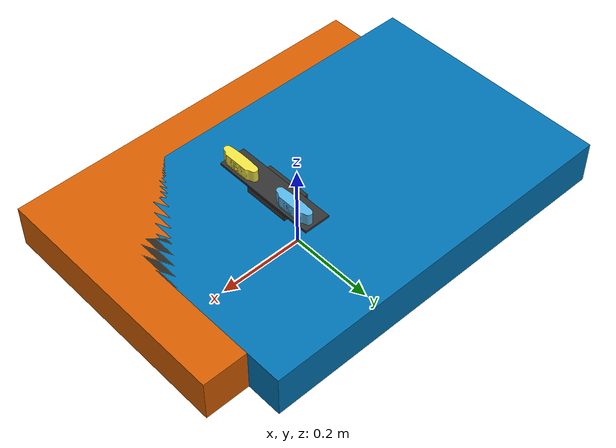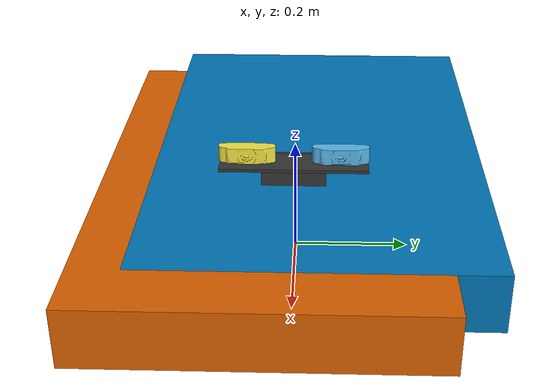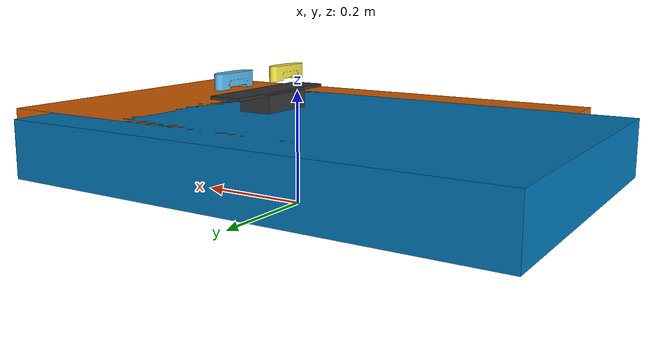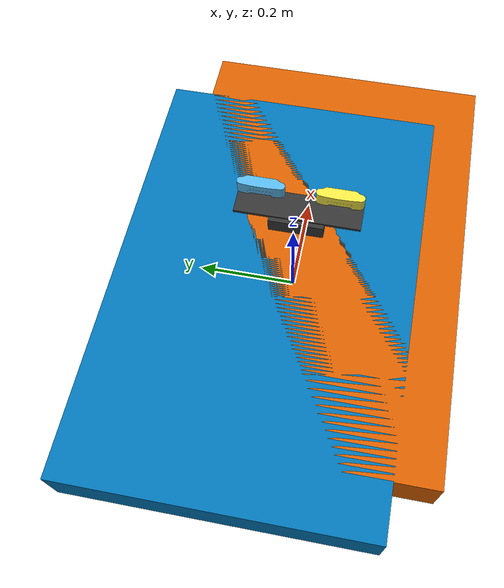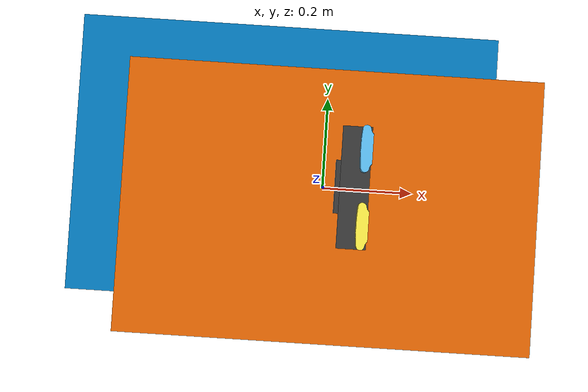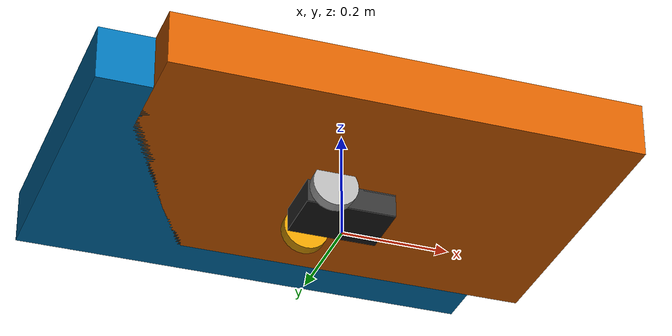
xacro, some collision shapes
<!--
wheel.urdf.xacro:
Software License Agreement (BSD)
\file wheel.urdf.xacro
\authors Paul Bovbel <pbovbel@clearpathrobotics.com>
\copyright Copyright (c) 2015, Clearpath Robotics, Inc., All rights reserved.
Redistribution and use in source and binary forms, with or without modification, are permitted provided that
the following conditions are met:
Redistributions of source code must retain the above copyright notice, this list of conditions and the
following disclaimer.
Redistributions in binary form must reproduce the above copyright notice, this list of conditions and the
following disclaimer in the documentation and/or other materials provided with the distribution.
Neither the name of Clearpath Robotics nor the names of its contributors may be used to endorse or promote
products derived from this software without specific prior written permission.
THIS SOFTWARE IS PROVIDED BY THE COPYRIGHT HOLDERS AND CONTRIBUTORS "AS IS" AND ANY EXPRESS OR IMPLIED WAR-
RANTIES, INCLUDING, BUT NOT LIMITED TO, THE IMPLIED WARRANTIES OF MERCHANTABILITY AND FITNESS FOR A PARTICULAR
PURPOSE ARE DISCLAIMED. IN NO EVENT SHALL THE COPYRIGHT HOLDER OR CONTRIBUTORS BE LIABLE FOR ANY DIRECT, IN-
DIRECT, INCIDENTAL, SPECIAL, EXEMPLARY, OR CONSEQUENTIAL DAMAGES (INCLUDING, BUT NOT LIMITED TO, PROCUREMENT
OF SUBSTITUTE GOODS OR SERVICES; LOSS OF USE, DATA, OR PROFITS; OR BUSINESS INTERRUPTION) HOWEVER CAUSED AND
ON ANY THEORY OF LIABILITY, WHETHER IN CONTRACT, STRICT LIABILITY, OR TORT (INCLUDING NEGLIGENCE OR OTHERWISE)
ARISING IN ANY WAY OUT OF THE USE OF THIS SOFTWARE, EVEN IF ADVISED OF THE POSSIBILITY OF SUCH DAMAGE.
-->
<?xml version="1.0"?>
<robot name="robot_summer" xmlns:xacro="http://ros.org/wiki/xacro">
    <!-- Included URDF/XACRO Files -->
    <xacro:include filename="$(find robot_model)/urdf/wheel.urdf.xacro" />
    <!--xacro:include filename="$(find robot_model)/urdf/lidar.gazebo" /-->
    <property name="M_PI" value="3.14159"/>

    <!-- Wheel Mounting Positions -->

    <property name="chassis_base_vertical_offset" value="0.02032" />

    <!-- Base Size: center chassis link size.  -->
    <property name="chassis_base_x_size" value="0.1651" />
    <property name="chassis_base_y_size" value="0.10795" />
    <property name="chassis_base_z_size" value="0.001" />

    <property name="axel_length" value="0.15804" />
    <property name="axel_radius" value="0.005" />

    <!-- shell Size: center chassis link size.  -->
    <property name="shell_1_x_size" value="0.1651" />
    <property name="shell_1_y_size" value="0.10795" />
    <property name="shell_1_z_size" value="0.08255" />
    <property name="shell_1_x_loc" value="0" />
    <property name="shell_1_y_loc" value="0" />
    <property name="shell_1_z_loc" value="0.041275" />

    <!-- shell Size: center chassis link size.  -->
    <property name="shell_2_x_size" value="0.06096" />
    <property name="shell_2_y_size" value="0.10795" />
    <property name="shell_2_z_size" value="0.1337818" />
    <property name="shell_2_x_loc" value="0.05207" />
    <property name="shell_2_y_loc" value="0" />
    <property name="shell_2_z_loc" value="0.0668909" />

    <!-- shell Size: center chassis link size.  -->
    <property name="shell_3_x_size" value="0.09017" />
    <property name="shell_3_y_size" value="0.24765" />
    <property name="shell_3_z_size" value="0.0127" />
    <property name="shell_3_x_loc" value="-0.037465" />
    <property name="shell_3_y_loc" value="0" />
    <property name="shell_3_z_loc" value="0.047625" />

    <!-- shell Size: center chassis link size.  -->
    <property name="shell_4_x_size" value="0.06000" />
    <property name="shell_4_y_size" value="0.24795" />
    <property name="shell_4_z_size" value="0.005334" />
    <property name="shell_4_x_loc" value="0.06096" />
    <property name="shell_4_y_loc" value="0" />
    <property name="shell_4_z_loc" value="0.1337818" />

    <!-- Wheel Properties -->
    <xacro:property name="wheel_length" value="0.021336" />
    <xacro:property name="wheel_radius" value="0.04191" />
    <property name="wheel_vertical_offset" value="0.085" />
    <xacro:macro name="robot_summer"/>

    <link name="chassis_footprint"/>
    <link name="base_link">
        <collision name='collision'>
            <geometry>
                <box size="${chassis_base_x_size} ${chassis_base_y_size} ${chassis_base_z_size}"/>
            </geometry>
        </collision>

        <visual name='visual'>
            <geometry>
                <box size="${chassis_base_x_size} ${chassis_base_y_size} ${chassis_base_z_size}"/>
            </geometry>
            <material name="grey">
                <color rgba="0.1 0.1 0.1 1"/>
            </material>
        </visual>
    </link>
    <joint name="chassis_footprint_joint" type="fixed">
        <parent link="chassis_footprint"/>
        <child link="base_link"/>
        <origin xyz="0 0 ${chassis_base_vertical_offset}" rpy="0 0 0"/>
    </joint>

    <link name="shell_link_1">
        <collision name='collision'>
            <geometry>
                <box size="${shell_1_x_size} ${shell_1_y_size} ${shell_1_z_size}"/>
            </geometry>
        </collision>
        <visual name='visual'>
            <geometry>
                <box size="${shell_1_x_size} ${shell_1_y_size} ${shell_1_z_size}"/>
            </geometry>
            <material name="light_grey">
                <color rgba="0.2 0.2 0.2 1"/>
            </material>
        </visual>
    </link>
    <joint name="chassis_shell_1_joint" type="fixed">
        <parent link="base_link"/>
        <child link="shell_link_1"/>
        <origin xyz="${shell_1_x_loc} ${shell_1_y_loc} ${shell_1_z_loc}" rpy="0 0 0"/>
    </joint>
    <link name="shell_link_2">
        <collision name='collision'>
            <geometry>
                <box size="${shell_2_x_size} ${shell_2_y_size} ${shell_2_z_size}"/>
            </geometry>
        </collision>
        <visual name='visual'>
            <geometry>
                <box size="${shell_2_x_size} ${shell_2_y_size} ${shell_2_z_size}"/>
            </geometry>
            <material name="light_grey">
                <color rgba="0.2 0.2 0.2 1"/>
            </material>
        </visual>
    </link>
    <joint name="chassis_shell_2_joint" type="fixed">
        <parent link="shell_link_1"/>
        <child link="shell_link_2"/>
        <origin xyz="${shell_2_x_loc} ${shell_2_y_loc} ${shell_2_z_loc}" rpy="0 0 0"/>
    </joint>
    <link name="shell_link_3">
        <collision name='collision'>
            <geometry>
                <box size="${shell_3_x_size} ${shell_3_y_size} ${shell_3_z_size}"/>
            </geometry>
        </collision>
        <visual name='visual'>
            <geometry>
                <box size="${shell_3_x_size} ${shell_3_y_size} ${shell_3_z_size}"/>
            </geometry>
            <material name="light_grey">
                <color rgba="0.2 0.2 0.2 1"/>
            </material>
        </visual>
    </link>
    <joint name="chassis_shell_3_joint" type="fixed">
        <parent link="shell_link_1"/>
        <child link="shell_link_3"/>
        <origin xyz="${shell_3_x_loc} ${shell_3_y_loc} ${shell_3_z_loc}" rpy="0 0 0"/>
    </joint>
    <link name="shell_link_4">
        <collision name='collision'>
            <geometry>
                <box size="${shell_4_x_size} ${shell_4_y_size} ${shell_4_z_size}"/>
            </geometry>
        </collision>
        <visual name='visual'>
            <geometry>
                <box size="${shell_4_x_size} ${shell_4_y_size} ${shell_4_z_size}"/>
            </geometry>
            <material name="light_grey">
                <color rgba="0.2 0.2 0.2 1"/>
            </material>
        </visual>
    </link>
    <joint name="chassis_shell_4_joint" type="fixed">
        <parent link="shell_link_1"/>
        <child link="shell_link_4"/>
        <origin xyz="${shell_4_x_loc} ${shell_4_y_loc} ${shell_4_z_loc}" rpy="0 0 0"/>
    </joint>
    <link name="axel_link">
        <collision name='collision'>
            <geometry>
                <cylinder length="${axel_length}" radius="${axel_radius}"/>
            </geometry>
        </collision>
        <visual name='visual'>
            <geometry>
                <cylinder length="${axel_length}" radius="${axel_radius}"/>
            </geometry>
            <material name="red">
                <color rgba="0 0 1 1"/>
            </material>
        </visual>
    </link>
    <joint name="axel_shell_1_joint" type="fixed">
        <parent link="shell_link_1"/>
        <child link="axel_link"/>
        <origin xyz="-0.04191 0 -0.019685" rpy="${M_PI/2} 0 0"/>
    </joint>
    <xacro:robot_wheel wheel_prefix="left" axel_prefix="axel_link">
        <origin xyz="0 0  ${axel_length/2}" rpy="${M_PI/2} 0 0" />
    </xacro:robot_wheel>
    <xacro:robot_wheel wheel_prefix="right" axel_prefix="axel_link">
        <origin xyz="0 0 -${axel_length/2}" rpy="${M_PI/2} 0 0" />
    </xacro:robot_wheel>

    <link name="camera_left_link">
        <collision name='collision'>
            <geometry>
                <box size="0.015 0.09398 0.03556"/>
            </geometry>
        </collision>
        <visual name='visual'>
            <geometry>
                <mesh filename="package://robot_model/meshes/Logitech_C920.stl" scale="0.001 0.001 0.001"/>
            </geometry>
            <origin xyz="0 0.05 -0.005" rpy="${M_PI/2} 0 -${M_PI/2} "/>
        </visual>
    </link>
    <joint name="camera_left_joint" type="fixed">
        <parent link="shell_link_4"/>
        <child link="camera_left_link"/>
        <!--origin xyz="${shell_4_x_size/2} 0.0773862 0.01778" rpy="0 -0.209439 0"/-->
        <origin xyz="${shell_4_x_size/2} 0.0773862 0.01778" rpy="0 0 0"/>
    </joint>
    <link name="camera_link"/>
    <joint name="camera_joint" type="fixed">
        <parent link="camera_left_link"/>
        <child link="camera_link"/>
        <!--origin xyz="${shell_4_x_size/2} 0.0773862 0.01778" rpy="0 -0.209439 0"/-->
        <origin xyz="0 0 0" rpy="0 0 0"/>
    </joint>
    <link name="camera_right_link">
        <collision name='collision'>
            <geometry>
                <box size="0.015 0.09398 0.03556"/>
            </geometry>
        </collision>
        <visual name='visual'>
            <geometry>
                <mesh filename="package://robot_model/meshes/Logitech_C920.stl" scale="0.001 0.001 0.001"/>
            </geometry>
            <origin xyz="0 0.05 -0.005" rpy="${M_PI/2} 0 -${M_PI/2} "/>
        </visual>
    </link>
    <joint name="camera_right_joint" type="fixed">
        <parent link="camera_left_link"/>
        <child link="camera_right_link"/>
        <origin xyz="0 -0.153924 0" rpy="0 0 0"/>
    </joint>
    <link name="raspberry_link_1">
        <collision name='collision'>
            <geometry>
                <box size="0.8560 0.5650 0.1"/>
            </geometry>
        </collision>
        <visual name='visual'>
            <geometry>
                <mesh filename="package://robot_model/meshes/Raspberry_Pi_3.stl" scale="0.001 0.001 0.001"/>
            </geometry>
        </visual>
    </link>
    <joint name="raspberry_joint_1" type="fixed">
        <parent link="shell_link_3"/>
        <child link="raspberry_link_1"/>
        <origin xyz="-0.05 0.0406325  0.005" rpy="0 0 0"/>
    </joint>
    <link name="raspberry_link_2">
        <collision name='collision'>
            <geometry>
                <box size="0.8560 0.5650 0.1"/>
            </geometry>
        </collision>
        <visual name='visual'>
            <geometry>
                <mesh filename="package://robot_model/meshes/Raspberry_Pi_3.stl" scale="0.001 0.001 0.001"/>
            </geometry>
        </visual>
    </link>
    <joint name="raspberry_joint_2" type="fixed">
        <parent link="shell_link_3"/>
        <child link="raspberry_link_2"/>
        <origin xyz="+0.05 -0.0406325  0.005" rpy="0 0 ${M_PI}"/>
    </joint>

</robot>

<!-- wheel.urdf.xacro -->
<robot xmlns:xacro="http://ros.org/wiki/xacro" name="robot_wheel">

	<xacro:macro name="robot_wheel" params="wheel_prefix axel_prefix *joint_pose">
		<link name="${wheel_prefix}_wheel_link">
			<visual>
				<!--origin xyz="0 0 0" rpy="0 0 0" /-->
				<origin xyz="0 0 0" rpy="${M_PI/2} 0 0" />
				<geometry>
					<!--mesh filename="package://robot_model/meshes/wheel.dae" scale="0.03 0.03 0.03"/-->
					<cylinder length="${wheel_length}" radius="${wheel_radius}" />
				</geometry>
			</visual>
			<collision>
				<origin xyz="0 0 0" rpy="${M_PI/2} 0 0" />
				<geometry>
					<cylinder length="${wheel_length}" radius="${wheel_radius}" />
				</geometry>
			</collision>
		</link>

		<joint name="${wheel_prefix}_wheel_joint" type="continuous">
            <parent link="${axel_prefix}"/>
			<child link="${wheel_prefix}_wheel_link"/>
			<xacro:insert_block name="joint_pose"/>
			<axis xyz="0 1 1" rpy="0 0 0" />
		</joint>

	</xacro:macro>
</robot>
